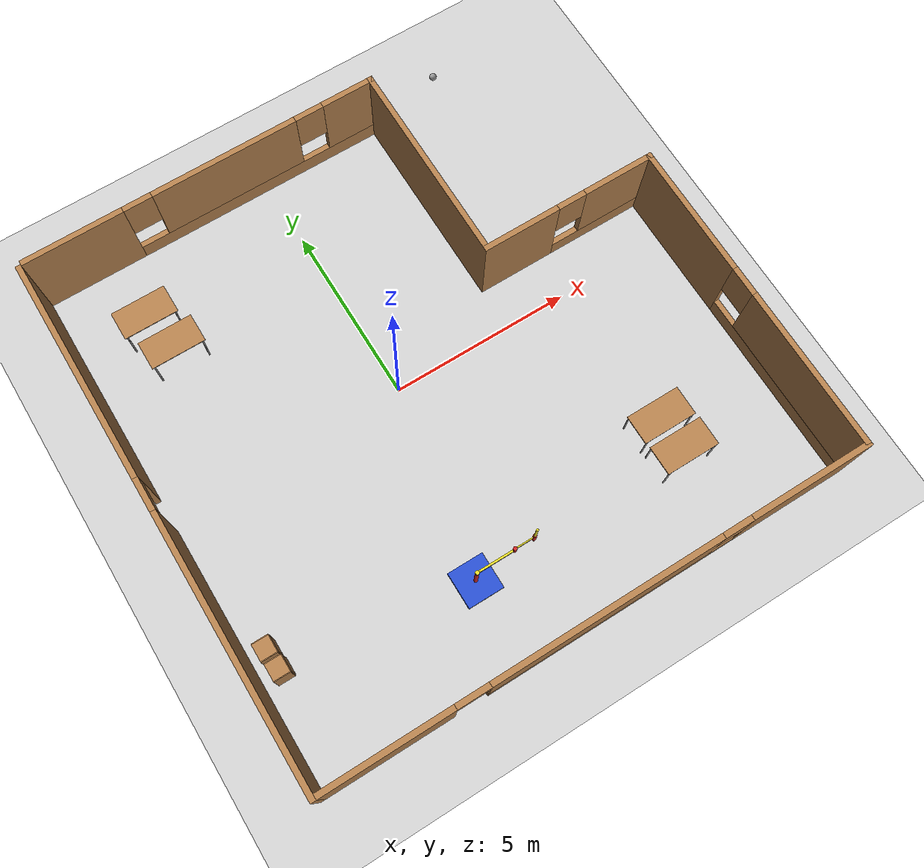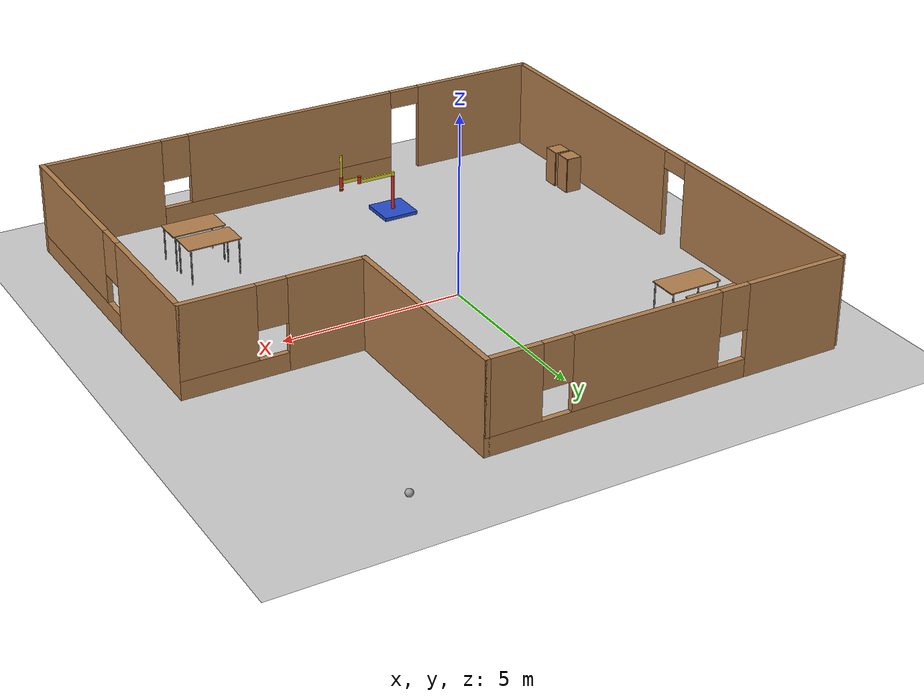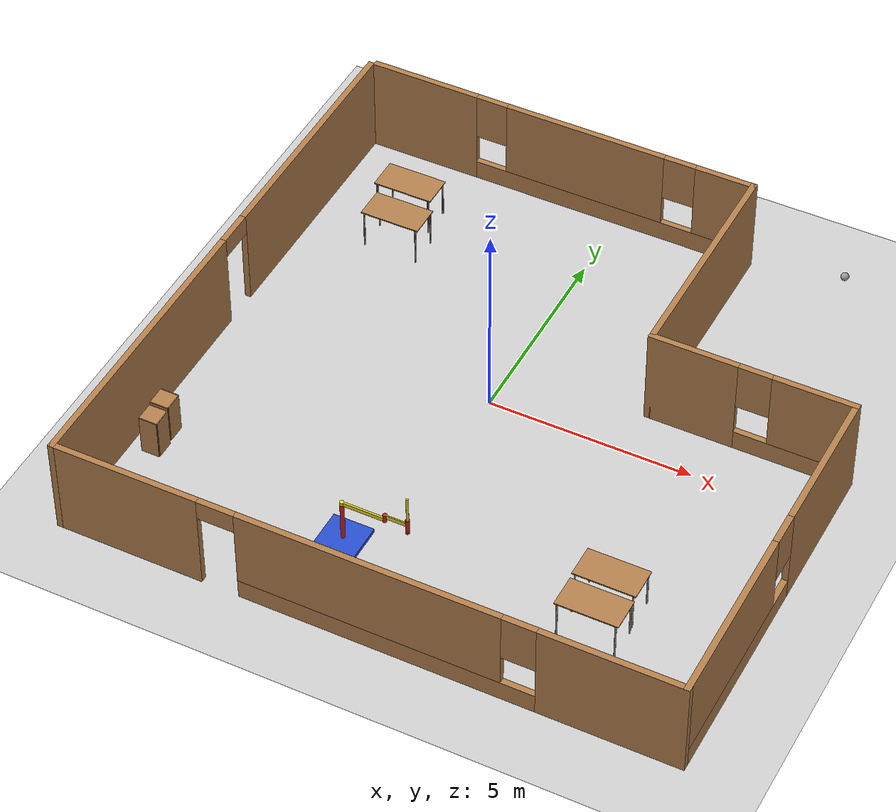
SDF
<sdf version="1.6">
 <world name="default">
  <light name="sun" type="directional">
   <pose>0 0 10 0 -0 0</pose>
   <diffuse>0.8 0.8 0.8 1</diffuse>
   <specular>0.2 0.2 0.2 1</specular>
   <attenuation>
    <range>1000</range>
    <constant>0.9</constant>
    <linear>0.01</linear>
    <quadratic>0.001</quadratic>
   </attenuation>
   <direction>-0.5 0.1 -0.9</direction>
  </light>
  <model name="ground_plane">
   <static>1</static>
   <link name="link">
    <collision name="collision">
     <geometry><plane><normal>0 0 1</normal><size>100 100</size></plane></geometry>
     <surface><friction><ode><mu>100</mu><mu2>50</mu2></ode></friction></surface>
    </collision>
    <visual name="visual">
     <cast_shadows>0</cast_shadows>
     <geometry><plane><normal>0 0 1</normal><size>100 100</size></plane></geometry>
     <material>
      <script><uri>file://media/materials/scripts/gazebo.material</uri><name>Gazebo/Grey</name></script>
     </material>
    </visual>
   </link>
  </model>
  <gravity>0 0 -9.8</gravity>
  <magnetic_field>6e-06 2.3e-05 -4.2e-05</magnetic_field>
  <atmosphere type="adiabatic"/>
  <physics name="default_physics" default="0" type="ode">
   <max_step_size>0.001</max_step_size>
   <real_time_factor>1</real_time_factor>
   <real_time_update_rate>1000</real_time_update_rate>
  </physics>
  <scene><ambient>0.4 0.4 0.4 1</ambient><background>0.7 0.7 0.7 1</background><shadows>1</shadows></scene>
  <spherical_coordinates>
   <surface_model>EARTH_WGS84</surface_model>
   <latitude_deg>0</latitude_deg>
   <longitude_deg>0</longitude_deg>
   <elevation>0</elevation>
   <heading_deg>0</heading_deg>
  </spherical_coordinates>
  <model name="My_building">
   <pose>0.78775 -0.34999 0 0 -0 0</pose>
   <link name="Wall_13">
    <pose>-2.35 7.225 0 0 -0 0</pose>
    <visual name="Wall_13_Visual_0">
     <pose>-3.60872 0 1.25 0 -0 0</pose>
     <geometry><box><size>2.78257 0.15 2.5</size></box></geometry>
     <material>
      <script><uri>file://media/materials/scripts/gazebo.material</uri><name>Gazebo/Wood</name></script>
      <ambient>1 1 1 1</ambient>
     </material>
     <meta><layer>0</layer></meta>
    </visual>
    <collision name="Wall_13_Collision_0">
     <geometry><box><size>2.78257 0.15 2.5</size></box></geometry>
     <pose>-3.60872 0 1.25 0 -0 0</pose>
    </collision>
    <visual name="Wall_13_Visual_1">
     <pose>1.39128 0 0.25 0 -0 0</pose>
     <geometry><box><size>7.21743 0.15 0.5</size></box></geometry>
     <material>
      <script><uri>file://media/materials/scripts/gazebo.material</uri><name>Gazebo/Wood</name></script>
      <ambient>1 1 1 1</ambient>
     </material>
     <meta><layer>0</layer></meta>
    </visual>
    <collision name="Wall_13_Collision_1">
     <geometry><box><size>7.21743 0.15 0.5</size></box></geometry>
     <pose>1.39128 0 0.25 0 -0 0</pose>
    </collision>
    <visual name="Wall_13_Visual_2">
     <pose>0.631176 0 1.5 0 -0 0</pose>
     <geometry><box><size>4.09722 0.15 2</size></box></geometry>
     <material>
      <script><uri>file://media/materials/scripts/gazebo.material</uri><name>Gazebo/Wood</name></script>
      <ambient>1 1 1 1</ambient>
     </material>
     <meta><layer>0</layer></meta>
    </visual>
    <collision name="Wall_13_Collision_2">
     <geometry><box><size>4.09722 0.15 2</size></box></geometry>
     <pose>0.631176 0 1.5 0 -0 0</pose>
    </collision>
    <visual name="Wall_13_Visual_3">
     <pose>4.23989 0 1.5 0 -0 0</pose>
     <geometry><box><size>1.52022 0.15 2</size></box></geometry>
     <material>
      <script><uri>file://media/materials/scripts/gazebo.material</uri><name>Gazebo/Wood</name></script>
      <ambient>1 1 1 1</ambient>
     </material>
     <meta><layer>0</layer></meta>
    </visual>
    <collision name="Wall_13_Collision_3">
     <geometry><box><size>1.52022 0.15 2</size></box></geometry>
     <pose>4.23989 0 1.5 0 -0 0</pose>
    </collision>
    <visual name="Wall_13_Visual_4">
     <pose>-1.81743 0 1.9 0 -0 0</pose>
     <geometry><box><size>0.8 0.15 1.2</size></box></geometry>
     <material>
      <script><uri>file://media/materials/scripts/gazebo.material</uri><name>Gazebo/Wood</name></script>
      <ambient>1 1 1 1</ambient>
     </material>
     <meta><layer>0</layer></meta>
    </visual>
    <collision name="Wall_13_Collision_4">
     <geometry><box><size>0.8 0.15 1.2</size></box></geometry>
     <pose>-1.81743 0 1.9 0 -0 0</pose>
    </collision>
    <visual name="Wall_13_Visual_5">
     <pose>3.07979 0 1.9 0 -0 0</pose>
     <geometry><box><size>0.8 0.15 1.2</size></box></geometry>
     <material>
      <script><uri>file://media/materials/scripts/gazebo.material</uri><name>Gazebo/Wood</name></script>
      <ambient>1 1 1 1</ambient>
     </material>
     <meta><layer>0</layer></meta>
    </visual>
    <collision name="Wall_13_Collision_5">
     <geometry><box><size>0.8 0.15 1.2</size></box></geometry>
     <pose>3.07979 0 1.9 0 -0 0</pose>
    </collision>
   </link>
   <link name="Wall_14">
    <collision name="Wall_14_Collision">
     <geometry><box><size>5.75 0.15 2.5</size></box></geometry>
     <pose>0 0 1.25 0 -0 0</pose>
    </collision>
    <visual name="Wall_14_Visual">
     <pose>0 0 1.25 0 -0 0</pose>
     <geometry><box><size>5.75 0.15 2.5</size></box></geometry>
     <material>
      <script><uri>file://media/materials/scripts/gazebo.material</uri><name>Gazebo/Wood</name></script>
      <ambient>0.760784 0.662745 0.627451 1</ambient>
     </material>
     <meta><layer>0</layer></meta>
    </visual>
    <pose>2.575 4.425 0 0 0 -1.5708</pose>
   </link>
   <link name="Wall_15">
    <pose>5 1.625 0 0 -0 0</pose>
    <visual name="Wall_15_Visual_0">
     <pose>-1.41634 0 1.25 0 -0 0</pose>
     <geometry><box><size>2.16732 0.15 2.5</size></box></geometry>
     <material>
      <script><uri>file://media/materials/scripts/gazebo.material</uri><name>Gazebo/Wood</name></script>
      <ambient>0.760784 0.662745 0.627451 1</ambient>
     </material>
     <meta><layer>0</layer></meta>
    </visual>
    <collision name="Wall_15_Collision_0">
     <geometry><box><size>2.16732 0.15 2.5</size></box></geometry>
     <pose>-1.41634 0 1.25 0 -0 0</pose>
    </collision>
    <visual name="Wall_15_Visual_1">
     <pose>1.08366 0 0.25 0 -0 0</pose>
     <geometry><box><size>2.83268 0.15 0.5</size></box></geometry>
     <material>
      <script><uri>file://media/materials/scripts/gazebo.material</uri><name>Gazebo/Wood</name></script>
      <ambient>0.760784 0.662745 0.627451 1</ambient>
     </material>
     <meta><layer>0</layer></meta>
    </visual>
    <collision name="Wall_15_Collision_1">
     <geometry><box><size>2.83268 0.15 0.5</size></box></geometry>
     <pose>1.08366 0 0.25 0 -0 0</pose>
    </collision>
    <visual name="Wall_15_Visual_2">
     <pose>1.48366 0 1.5 0 -0 0</pose>
     <geometry><box><size>2.03268 0.15 2</size></box></geometry>
     <material>
      <script><uri>file://media/materials/scripts/gazebo.material</uri><name>Gazebo/Wood</name></script>
      <ambient>0.760784 0.662745 0.627451 1</ambient>
     </material>
     <meta><layer>0</layer></meta>
    </visual>
    <collision name="Wall_15_Collision_2">
     <geometry><box><size>2.03268 0.15 2</size></box></geometry>
     <pose>1.48366 0 1.5 0 -0 0</pose>
    </collision>
    <visual name="Wall_15_Visual_3">
     <pose>0.06732 0 1.9 0 -0 0</pose>
     <geometry><box><size>0.8 0.15 1.2</size></box></geometry>
     <material>
      <script><uri>file://media/materials/scripts/gazebo.material</uri><name>Gazebo/Wood</name></script>
      <ambient>0.760784 0.662745 0.627451 1</ambient>
     </material>
     <meta><layer>0</layer></meta>
    </visual>
    <collision name="Wall_15_Collision_3">
     <geometry><box><size>0.8 0.15 1.2</size></box></geometry>
     <pose>0.06732 0 1.9 0 -0 0</pose>
    </collision>
   </link>
   <link name="Wall_16">
    <pose>7.425 -2.8 0 0 0 -1.5708</pose>
    <visual name="Wall_16_Visual_0">
     <pose>-2.64832 0 1.25 0 -0 0</pose>
     <geometry><box><size>3.70336 0.15 2.5</size></box></geometry>
     <material>
      <script><uri>file://media/materials/scripts/gazebo.material</uri><name>Gazebo/Wood</name></script>
      <ambient>0.760784 0.662745 0.627451 1</ambient>
     </material>
     <meta><layer>0</layer></meta>
    </visual>
    <collision name="Wall_16_Collision_0">
     <geometry><box><size>3.70336 0.15 2.5</size></box></geometry>
     <pose>-2.64832 0 1.25 0 -0 0</pose>
    </collision>
    <visual name="Wall_16_Visual_1">
     <pose>1.85168 0 0.25 0 -0 0</pose>
     <geometry><box><size>5.29664 0.15 0.5</size></box></geometry>
     <material>
      <script><uri>file://media/materials/scripts/gazebo.material</uri><name>Gazebo/Wood</name></script>
      <ambient>0.760784 0.662745 0.627451 1</ambient>
     </material>
     <meta><layer>0</layer></meta>
    </visual>
    <collision name="Wall_16_Collision_1">
     <geometry><box><size>5.29664 0.15 0.5</size></box></geometry>
     <pose>1.85168 0 0.25 0 -0 0</pose>
    </collision>
    <visual name="Wall_16_Visual_2">
     <pose>2.25168 0 1.5 0 -0 0</pose>
     <geometry><box><size>4.49664 0.15 2</size></box></geometry>
     <material>
      <script><uri>file://media/materials/scripts/gazebo.material</uri><name>Gazebo/Wood</name></script>
      <ambient>0.760784 0.662745 0.627451 1</ambient>
     </material>
     <meta><layer>0</layer></meta>
    </visual>
    <collision name="Wall_16_Collision_2">
     <geometry><box><size>4.49664 0.15 2</size></box></geometry>
     <pose>2.25168 0 1.5 0 -0 0</pose>
    </collision>
    <visual name="Wall_16_Visual_3">
     <pose>-0.396642 0 1.9 0 -0 0</pose>
     <geometry><box><size>0.8 0.15 1.2</size></box></geometry>
     <material>
      <script><uri>file://media/materials/scripts/gazebo.material</uri><name>Gazebo/Wood</name></script>
      <ambient>0.760784 0.662745 0.627451 1</ambient>
     </material>
     <meta><layer>0</layer></meta>
    </visual>
    <collision name="Wall_16_Collision_3">
     <geometry><box><size>0.8 0.15 1.2</size></box></geometry>
     <pose>-0.396642 0 1.9 0 -0 0</pose>
    </collision>
   </link>
   <link name="Wall_17">
    <pose>0 -7.225 0 0 -0 3.14159</pose>
    <visual name="Wall_17_Visual_0">
     <pose>-5.80155 0 1.25 0 -0 0</pose>
     <geometry><box><size>3.3969 0.15 2.5</size></box></geometry>
     <material>
      <script><uri>file://media/materials/scripts/gazebo.material</uri><name>Gazebo/Wood</name></script>
      <ambient>0.760784 0.662745 0.627451 1</ambient>
     </material>
     <meta><layer>0</layer></meta>
    </visual>
    <collision name="Wall_17_Collision_0">
     <geometry><box><size>3.3969 0.15 2.5</size></box></geometry>
     <pose>-5.80155 0 1.25 0 -0 0</pose>
    </collision>
    <visual name="Wall_17_Visual_1">
     <pose>5.67394 0 1.25 0 -0 0</pose>
     <geometry><box><size>3.65213 0.15 2.5</size></box></geometry>
     <material>
      <script><uri>file://media/materials/scripts/gazebo.material</uri><name>Gazebo/Wood</name></script>
      <ambient>0.760784 0.662745 0.627451 1</ambient>
     </material>
     <meta><layer>0</layer></meta>
    </visual>
    <collision name="Wall_17_Collision_1">
     <geometry><box><size>3.65213 0.15 2.5</size></box></geometry>
     <pose>5.67394 0 1.25 0 -0 0</pose>
    </collision>
    <visual name="Wall_17_Visual_2">
     <pose>-0.577613 0 0.25 0 -0 0</pose>
     <geometry><box><size>7.05096 0.15 0.5</size></box></geometry>
     <material>
      <script><uri>file://media/materials/scripts/gazebo.material</uri><name>Gazebo/Wood</name></script>
      <ambient>0.760784 0.662745 0.627451 1</ambient>
     </material>
     <meta><layer>0</layer></meta>
    </visual>
    <collision name="Wall_17_Collision_2">
     <geometry><box><size>7.05096 0.15 0.5</size></box></geometry>
     <pose>-0.577613 0 0.25 0 -0 0</pose>
    </collision>
    <visual name="Wall_17_Visual_3">
     <pose>-0.177613 0 1.5 0 -0 0</pose>
     <geometry><box><size>6.25096 0.15 2</size></box></geometry>
     <material>
      <script><uri>file://media/materials/scripts/gazebo.material</uri><name>Gazebo/Wood</name></script>
      <ambient>0.760784 0.662745 0.627451 1</ambient>
     </material>
     <meta><layer>0</layer></meta>
    </visual>
    <collision name="Wall_17_Collision_3">
     <geometry><box><size>6.25096 0.15 2</size></box></geometry>
     <pose>-0.177613 0 1.5 0 -0 0</pose>
    </collision>
    <visual name="Wall_17_Visual_4">
     <pose>-3.70309 0 1.9 0 -0 0</pose>
     <geometry><box><size>0.8 0.15 1.2</size></box></geometry>
     <material>
      <script><uri>file://media/materials/scripts/gazebo.material</uri><name>Gazebo/Wood</name></script>
      <ambient>0.760784 0.662745 0.627451 1</ambient>
     </material>
     <meta><layer>0</layer></meta>
    </visual>
    <collision name="Wall_17_Collision_4">
     <geometry><box><size>0.8 0.15 1.2</size></box></geometry>
     <pose>-3.70309 0 1.9 0 -0 0</pose>
    </collision>
    <visual name="Wall_17_Visual_5">
     <pose>3.39787 0 2.25 0 -0 0</pose>
     <geometry><box><size>0.9 0.15 0.5</size></box></geometry>
     <material>
      <script><uri>file://media/materials/scripts/gazebo.material</uri><name>Gazebo/Wood</name></script>
      <ambient>0.760784 0.662745 0.627451 1</ambient>
     </material>
     <meta><layer>0</layer></meta>
    </visual>
    <collision name="Wall_17_Collision_5">
     <geometry><box><size>0.9 0.15 0.5</size></box></geometry>
     <pose>3.39787 0 2.25 0 -0 0</pose>
    </collision>
   </link>
   <link name="Wall_18">
    <pose>-7.425 -0.049999 0 0 -0 1.5708</pose>
    <visual name="Wall_18_Visual_0">
     <pose>-3.575 0 1.25 0 -0 0</pose>
     <geometry><box><size>7.34999 0.15 2.5</size></box></geometry>
     <material>
      <script><uri>file://media/materials/scripts/gazebo.material</uri><name>Gazebo/Wood</name></script>
      <ambient>0.760784 0.662745 0.627451 1</ambient>
     </material>
     <meta><layer>0</layer></meta>
    </visual>
    <collision name="Wall_18_Collision_0">
     <geometry><box><size>7.34999 0.15 2.5</size></box></geometry>
     <pose>-3.575 0 1.25 0 -0 0</pose>
    </collision>
    <visual name="Wall_18_Visual_1">
     <pose>4.125 0 1.25 0 -0 0</pose>
     <geometry><box><size>6.25001 0.15 2.5</size></box></geometry>
     <material>
      <script><uri>file://media/materials/scripts/gazebo.material</uri><name>Gazebo/Wood</name></script>
      <ambient>0.760784 0.662745 0.627451 1</ambient>
     </material>
     <meta><layer>0</layer></meta>
    </visual>
    <collision name="Wall_18_Collision_1">
     <geometry><box><size>6.25001 0.15 2.5</size></box></geometry>
     <pose>4.125 0 1.25 0 -0 0</pose>
    </collision>
    <visual name="Wall_18_Visual_2">
     <pose>0.549992 0 2.25 0 -0 0</pose>
     <geometry><box><size>0.9 0.15 0.5</size></box></geometry>
     <material>
      <script><uri>file://media/materials/scripts/gazebo.material</uri><name>Gazebo/Wood</name></script>
      <ambient>0.760784 0.662745 0.627451 1</ambient>
     </material>
     <meta><layer>0</layer></meta>
    </visual>
    <collision name="Wall_18_Collision_2">
     <geometry><box><size>0.9 0.15 0.5</size></box></geometry>
     <pose>0.549992 0 2.25 0 -0 0</pose>
    </collision>
   </link>
   <static>1</static>
  </model>
  <model name="ball">
   <link name="link_0">
    <inertial>
     <mass>1</mass>
     <inertia><ixx>0.1</ixx><ixy>0</ixy><ixz>0</ixz><iyy>0.1</iyy><iyz>0</iyz><izz>0.1</izz></inertia>
    </inertial>
    <visual name="visual">
     <geometry><sphere><radius>0.1</radius></sphere></geometry>
     <material>
      <lighting>1</lighting>
      <script><uri>file://media/materials/scripts/gazebo.material</uri><name>Gazebo/Grey</name></script>
      <ambient>1 1 1 1</ambient>
      <diffuse>1 1 1 1</diffuse>
      <specular>1 1 1 1</specular>
      <emissive>1 1 1 1</emissive>
      <shader type="vertex"><normal_map>__default__</normal_map></shader>
     </material>
    </visual>
    <collision name="collision">
     <geometry><sphere><radius>0.1</radius></sphere></geometry>
     <surface>
      <friction>
       <ode><mu>1</mu><mu2>1</mu2><fdir1>0 0 0</fdir1><slip1>0</slip1><slip2>0</slip2></ode>
       <torsional>
        <coefficient>1</coefficient>
        <patch_radius>0</patch_radius>
        <surface_radius>0</surface_radius>
        <use_patch_radius>1</use_patch_radius>
        <ode><slip>0</slip></ode>
       </torsional>
      </friction>
      <bounce><restitution_coefficient>0</restitution_coefficient><threshold>1e+06</threshold></bounce>
      <contact>
       <collide_without_contact>0</collide_without_contact>
       <collide_without_contact_bitmask>1</collide_without_contact_bitmask>
       <collide_bitmask>1</collide_bitmask>
       <ode>
        <soft_cfm>0</soft_cfm>
        <soft_erp>0.2</soft_erp>
        <kp>1e+13</kp>
        <kd>1</kd>
        <max_vel>0.01</max_vel>
        <min_depth>0</min_depth>
       </ode>
       <bullet>
        <split_impulse>1</split_impulse>
        <split_impulse_penetration_threshold>-0.01</split_impulse_penetration_threshold>
        <soft_cfm>0</soft_cfm>
        <soft_erp>0.2</soft_erp>
        <kp>1e+13</kp>
        <kd>1</kd>
       </bullet>
      </contact>
     </surface>
    </collision>
   </link>
   <static>0</static>
   <pose>5.61344 7.45896 0.1 0 -0 0</pose>
  </model>
  <model name="cabinet">
   <static>1</static>
   <link name="cabinet_bottom_plate">
    <inertial>
     <pose>0 0 -1 0 -0 0</pose>
     <inertia><ixx>2.05</ixx><ixy>0</ixy><ixz>0</ixz><iyy>2.05</iyy><iyz>0</iyz><izz>2.05</izz></inertia>
     <mass>25</mass>
    </inertial>
    <collision name="cabinet_bottom_plate_geom">
     <pose>0 0 0.01 0 -0 0</pose>
     <geometry><box><size>0.45 0.45 0.02</size></box></geometry>
    </collision>
    <visual name="cabinet_bottom_plate_geom_visual">
     <pose>0 0 0.01 0 -0 0</pose>
     <geometry><box><size>0.45 0.45 0.02</size></box></geometry>
     <material>
      <script><uri>file://media/materials/scripts/gazebo.material</uri><name>Gazebo/Wood</name></script>
     </material>
    </visual>
    <collision name="cabinet_bottom_plate_geom_cabinet_back_plate">
     <pose>0.235 0 0.51 0 -0 0</pose>
     <geometry><box><size>0.02 0.45 1.02</size></box></geometry>
    </collision>
    <visual name="cabinet_bottom_plate_geom_cabinet_back_plate_visual">
     <pose>0.235 0 0.51 0 -0 0</pose>
     <geometry><box><size>0.02 0.45 1.02</size></box></geometry>
     <material>
      <script><uri>file://media/materials/scripts/gazebo.material</uri><name>Gazebo/Wood</name></script>
     </material>
    </visual>
    <collision name="cabinet_bottom_plate_geom_cabinet_left_plate">
     <pose>0 0.235 0.51 0 -0 0</pose>
     <geometry><box><size>0.45 0.02 1.02</size></box></geometry>
    </collision>
    <visual name="cabinet_bottom_plate_geom_cabinet_left_plate_visual">
     <pose>0 0.235 0.51 0 -0 0</pose>
     <geometry><box><size>0.45 0.02 1.02</size></box></geometry>
     <material>
      <script><uri>file://media/materials/scripts/gazebo.material</uri><name>Gazebo/Wood</name></script>
     </material>
    </visual>
    <collision name="cabinet_bottom_plate_geom_cabinet_middle_plate">
     <pose>0 0 0.51 0 -0 0</pose>
     <geometry><box><size>0.45 0.45 0.02</size></box></geometry>
    </collision>
    <visual name="cabinet_bottom_plate_geom_cabinet_middle_plate_visual">
     <pose>0 0 0.51 0 -0 0</pose>
     <geometry><box><size>0.45 0.45 0.02</size></box></geometry>
     <material>
      <script><uri>file://media/materials/scripts/gazebo.material</uri><name>Gazebo/Wood</name></script>
     </material>
    </visual>
    <collision name="cabinet_bottom_plate_geom_cabinet_right_plate">
     <pose>0 -0.235 0.51 0 -0 0</pose>
     <geometry><box><size>0.45 0.02 1.02</size></box></geometry>
    </collision>
    <visual name="cabinet_bottom_plate_geom_cabinet_right_plate_visual">
     <pose>0 -0.235 0.51 0 -0 0</pose>
     <geometry><box><size>0.45 0.02 1.02</size></box></geometry>
     <material>
      <script><uri>file://media/materials/scripts/gazebo.material</uri><name>Gazebo/Wood</name></script>
     </material>
    </visual>
    <collision name="cabinet_bottom_plate_geom_cabinet_top_plate">
     <pose>0 0 1.01 0 -0 0</pose>
     <geometry><box><size>0.45 0.45 0.02</size></box></geometry>
    </collision>
    <visual name="cabinet_bottom_plate_geom_cabinet_top_plate_visual">
     <pose>0 0 1.01 0 -0 0</pose>
     <geometry><box><size>0.45 0.45 0.02</size></box></geometry>
     <material>
      <script><uri>file://media/materials/scripts/gazebo.material</uri><name>Gazebo/Wood</name></script>
     </material>
    </visual>
   </link>
   <pose>-6.06194 -4.071 0 0 -0 0</pose>
  </model>
  <model name="cabinet_0">
   <static>1</static>
   <link name="cabinet_bottom_plate">
    <inertial>
     <pose>0 0 -1 0 -0 0</pose>
     <inertia><ixx>2.05</ixx><ixy>0</ixy><ixz>0</ixz><iyy>2.05</iyy><iyz>0</iyz><izz>2.05</izz></inertia>
     <mass>25</mass>
    </inertial>
    <collision name="cabinet_bottom_plate_geom">
     <pose>0 0 0.01 0 -0 0</pose>
     <geometry><box><size>0.45 0.45 0.02</size></box></geometry>
    </collision>
    <visual name="cabinet_bottom_plate_geom_visual">
     <pose>0 0 0.01 0 -0 0</pose>
     <geometry><box><size>0.45 0.45 0.02</size></box></geometry>
     <material>
      <script><uri>file://media/materials/scripts/gazebo.material</uri><name>Gazebo/Wood</name></script>
     </material>
    </visual>
    <collision name="cabinet_bottom_plate_geom_cabinet_back_plate">
     <pose>0.235 0 0.51 0 -0 0</pose>
     <geometry><box><size>0.02 0.45 1.02</size></box></geometry>
    </collision>
    <visual name="cabinet_bottom_plate_geom_cabinet_back_plate_visual">
     <pose>0.235 0 0.51 0 -0 0</pose>
     <geometry><box><size>0.02 0.45 1.02</size></box></geometry>
     <material>
      <script><uri>file://media/materials/scripts/gazebo.material</uri><name>Gazebo/Wood</name></script>
     </material>
    </visual>
    <collision name="cabinet_bottom_plate_geom_cabinet_left_plate">
     <pose>0 0.235 0.51 0 -0 0</pose>
     <geometry><box><size>0.45 0.02 1.02</size></box></geometry>
    </collision>
    <visual name="cabinet_bottom_plate_geom_cabinet_left_plate_visual">
     <pose>0 0.235 0.51 0 -0 0</pose>
     <geometry><box><size>0.45 0.02 1.02</size></box></geometry>
     <material>
      <script><uri>file://media/materials/scripts/gazebo.material</uri><name>Gazebo/Wood</name></script>
     </material>
    </visual>
    <collision name="cabinet_bottom_plate_geom_cabinet_middle_plate">
     <pose>0 0 0.51 0 -0 0</pose>
     <geometry><box><size>0.45 0.45 0.02</size></box></geometry>
    </collision>
    <visual name="cabinet_bottom_plate_geom_cabinet_middle_plate_visual">
     <pose>0 0 0.51 0 -0 0</pose>
     <geometry><box><size>0.45 0.45 0.02</size></box></geometry>
     <material>
      <script><uri>file://media/materials/scripts/gazebo.material</uri><name>Gazebo/Wood</name></script>
     </material>
    </visual>
    <collision name="cabinet_bottom_plate_geom_cabinet_right_plate">
     <pose>0 -0.235 0.51 0 -0 0</pose>
     <geometry><box><size>0.45 0.02 1.02</size></box></geometry>
    </collision>
    <visual name="cabinet_bottom_plate_geom_cabinet_right_plate_visual">
     <pose>0 -0.235 0.51 0 -0 0</pose>
     <geometry><box><size>0.45 0.02 1.02</size></box></geometry>
     <material>
      <script><uri>file://media/materials/scripts/gazebo.material</uri><name>Gazebo/Wood</name></script>
     </material>
    </visual>
    <collision name="cabinet_bottom_plate_geom_cabinet_top_plate">
     <pose>0 0 1.01 0 -0 0</pose>
     <geometry><box><size>0.45 0.45 0.02</size></box></geometry>
    </collision>
    <visual name="cabinet_bottom_plate_geom_cabinet_top_plate_visual">
     <pose>0 0 1.01 0 -0 0</pose>
     <geometry><box><size>0.45 0.45 0.02</size></box></geometry>
     <material>
      <script><uri>file://media/materials/scripts/gazebo.material</uri><name>Gazebo/Wood</name></script>
     </material>
    </visual>
   </link>
   <pose>-6.02678 -4.61449 0 0 -0 0</pose>
  </model>
  <model name="simple_arm">
   <link name="arm_base">
    <inertial>
     <pose>0 0 0.00099 0 -0 0</pose>
     <inertia><ixx>1.11</ixx><ixy>0</ixy><ixz>0</ixz><iyy>100.11</iyy><iyz>0</iyz><izz>1.01</izz></inertia>
     <mass>101</mass>
    </inertial>
    <collision name="arm_base_geom">
     <pose>0 0 0.05 0 -0 0</pose>
     <geometry><box><size>1 1 0.1</size></box></geometry>
    </collision>
    <visual name="arm_base_geom_visual">
     <pose>0 0 0.05 0 -0 0</pose>
     <geometry><box><size>1 1 0.1</size></box></geometry>
     <material>
      <script><uri>file://media/materials/scripts/gazebo.material</uri><name>Gazebo/Blue</name></script>
     </material>
    </visual>
    <collision name="arm_base_geom_arm_trunk">
     <pose>0 0 0.6 0 -0 0</pose>
     <geometry><cylinder><radius>0.05</radius><length>1</length></cylinder></geometry>
    </collision>
    <visual name="arm_base_geom_arm_trunk_visual">
     <pose>0 0 0.6 0 -0 0</pose>
     <geometry><cylinder><radius>0.05</radius><length>1</length></cylinder></geometry>
     <material>
      <script><uri>file://media/materials/scripts/gazebo.material</uri><name>Gazebo/Red</name></script>
     </material>
    </visual>
   </link>
   <link name="arm_shoulder_pan">
    <pose>0 0 1.1 0 -0 0</pose>
    <inertial>
     <pose>0.045455 0 0 0 -0 0</pose>
     <inertia><ixx>0.011</ixx><ixy>0</ixy><ixz>0</ixz><iyy>0.0225</iyy><iyz>0</iyz><izz>0.0135</izz></inertia>
     <mass>1.1</mass>
    </inertial>
    <collision name="arm_shoulder_pan_geom">
     <pose>0 0 0.05 0 -0 0</pose>
     <geometry><cylinder><radius>0.05</radius><length>0.1</length></cylinder></geometry>
    </collision>
    <visual name="arm_shoulder_pan_geom_visual">
     <pose>0 0 0.05 0 -0 0</pose>
     <geometry><cylinder><radius>0.05</radius><length>0.1</length></cylinder></geometry>
     <material>
      <script><uri>file://media/materials/scripts/gazebo.material</uri><name>Gazebo/Yellow</name></script>
     </material>
    </visual>
    <collision name="arm_shoulder_pan_geom_arm_shoulder">
     <pose>0.55 0 0.05 0 -0 0</pose>
     <geometry><box><size>1 0.05 0.1</size></box></geometry>
    </collision>
    <visual name="arm_shoulder_pan_geom_arm_shoulder_visual">
     <pose>0.55 0 0.05 0 -0 0</pose>
     <geometry><box><size>1 0.05 0.1</size></box></geometry>
     <material>
      <script><uri>file://media/materials/scripts/gazebo.material</uri><name>Gazebo/Yellow</name></script>
     </material>
    </visual>
   </link>
   <link name="arm_elbow_pan">
    <pose>1.05 0 1.1 0 -0 0</pose>
    <inertial>
     <pose>0.0875 0 0.083333 0 -0 0</pose>
     <inertia>
      <ixx>0.031</ixx>
      <ixy>0</ixy>
      <ixz>0.005</ixz>
      <iyy>0.07275</iyy>
      <iyz>0</iyz>
      <izz>0.04475</izz>
     </inertia>
     <mass>1.2</mass>
    </inertial>
    <collision name="arm_elbow_pan_geom">
     <pose>0 0 0.1 0 -0 0</pose>
     <geometry><cylinder><radius>0.05</radius><length>0.2</length></cylinder></geometry>
    </collision>
    <visual name="arm_elbow_pan_geom_visual">
     <pose>0 0 0.1 0 -0 0</pose>
     <geometry><cylinder><radius>0.05</radius><length>0.2</length></cylinder></geometry>
     <material>
      <script><uri>file://media/materials/scripts/gazebo.material</uri><name>Gazebo/Red</name></script>
     </material>
    </visual>
    <collision name="arm_elbow_pan_geom_arm_elbow">
     <pose>0.3 0 0.15 0 -0 0</pose>
     <geometry><box><size>0.5 0.03 0.1</size></box></geometry>
    </collision>
    <visual name="arm_elbow_pan_geom_arm_elbow_visual">
     <pose>0.3 0 0.15 0 -0 0</pose>
     <geometry><box><size>0.5 0.03 0.1</size></box></geometry>
     <material>
      <script><uri>file://media/materials/scripts/gazebo.material</uri><name>Gazebo/Yellow</name></script>
     </material>
    </visual>
    <collision name="arm_elbow_pan_geom_arm_wrist">
     <pose>0.55 0 0.15 0 -0 0</pose>
     <geometry><cylinder><radius>0.05</radius><length>0.3</length></cylinder></geometry>
    </collision>
    <visual name="arm_elbow_pan_geom_arm_wrist_visual">
     <pose>0.55 0 0.15 0 -0 0</pose>
     <geometry><cylinder><radius>0.05</radius><length>0.3</length></cylinder></geometry>
     <material>
      <script><uri>file://media/materials/scripts/gazebo.material</uri><name>Gazebo/Red</name></script>
     </material>
    </visual>
   </link>
   <link name="arm_wrist_lift">
    <pose>1.6 0 1.05 0 -0 0</pose>
    <inertial>
     <inertia><ixx>0.01</ixx><ixy>0</ixy><ixz>0</ixz><iyy>0.01</iyy><iyz>0</iyz><izz>0.001</izz></inertia>
     <mass>0.1</mass>
    </inertial>
    <collision name="arm_wrist_lift_geom">
     <pose>0 0 0.5 0 -0 0</pose>
     <geometry><cylinder><radius>0.03</radius><length>1</length></cylinder></geometry>
    </collision>
    <visual name="arm_wrist_lift_geom_visual">
     <pose>0 0 0.5 0 -0 0</pose>
     <geometry><cylinder><radius>0.03</radius><length>1</length></cylinder></geometry>
     <material>
      <script><uri>file://media/materials/scripts/gazebo.material</uri><name>Gazebo/Yellow</name></script>
     </material>
    </visual>
   </link>
   <link name="arm_wrist_roll">
    <pose>1.6 0 1 0 -0 0</pose>
    <inertial>
     <inertia><ixx>0.01</ixx><ixy>0</ixy><ixz>0</ixz><iyy>0.01</iyy><iyz>0</iyz><izz>0.001</izz></inertia>
     <mass>0.1</mass>
    </inertial>
    <collision name="arm_wrist_roll_geom">
     <pose>0 0 0.025 0 -0 0</pose>
     <geometry><cylinder><radius>0.05</radius><length>0.05</length></cylinder></geometry>
    </collision>
    <visual name="arm_wrist_roll_geom_visual">
     <pose>0 0 0.025 0 -0 0</pose>
     <geometry><cylinder><radius>0.05</radius><length>0.05</length></cylinder></geometry>
     <material>
      <script><uri>file://media/materials/scripts/gazebo.material</uri><name>Gazebo/Red</name></script>
     </material>
    </visual>
   </link>
   <joint name="arm_shoulder_pan_joint" type="revolute">
    <parent>arm_base</parent>
    <child>arm_shoulder_pan</child>
    <axis>
     <dynamics>
      <damping>1</damping>
      <friction>0</friction>
      <spring_reference>0</spring_reference>
      <spring_stiffness>0</spring_stiffness>
     </dynamics>
     <xyz>0 0 1</xyz>
     <use_parent_model_frame>1</use_parent_model_frame>
     <limit><lower>-1e+16</lower><upper>1e+16</upper></limit>
    </axis>
   </joint>
   <joint name="arm_elbow_pan_joint" type="revolute">
    <parent>arm_shoulder_pan</parent>
    <child>arm_elbow_pan</child>
    <axis>
     <dynamics>
      <damping>1</damping>
      <friction>0</friction>
      <spring_reference>0</spring_reference>
      <spring_stiffness>0</spring_stiffness>
     </dynamics>
     <xyz>0 0 1</xyz>
     <use_parent_model_frame>1</use_parent_model_frame>
     <limit><lower>-1e+16</lower><upper>1e+16</upper></limit>
    </axis>
   </joint>
   <joint name="arm_wrist_lift_joint" type="prismatic">
    <parent>arm_elbow_pan</parent>
    <child>arm_wrist_lift</child>
    <axis>
     <dynamics>
      <damping>1</damping>
      <friction>0</friction>
      <spring_reference>0</spring_reference>
      <spring_stiffness>0</spring_stiffness>
     </dynamics>
     <limit><lower>-0.8</lower><upper>0.1</upper></limit>
     <xyz>0 0 1</xyz>
     <use_parent_model_frame>1</use_parent_model_frame>
    </axis>
   </joint>
   <joint name="arm_wrist_roll_joint" type="revolute">
    <parent>arm_wrist_lift</parent>
    <child>arm_wrist_roll</child>
    <axis>
     <dynamics>
      <damping>1</damping>
      <friction>0</friction>
      <spring_reference>0</spring_reference>
      <spring_stiffness>0</spring_stiffness>
     </dynamics>
     <limit><lower>-2.99999</lower><upper>2.99999</upper></limit>
     <xyz>0 0 1</xyz>
     <use_parent_model_frame>1</use_parent_model_frame>
    </axis>
   </joint>
   <pose>-0.948035 -5.1928 0 0 0 -0.000592</pose>
  </model>
  <model name="table">
   <static>1</static>
   <link name="link">
    <collision name="surface">
     <pose>0 0 1 0 -0 0</pose>
     <geometry><box><size>1.5 0.8 0.03</size></box></geometry>
     <surface><friction><ode><mu>0.6</mu><mu2>0.6</mu2></ode></friction></surface>
    </collision>
    <visual name="visual1">
     <pose>0 0 1 0 -0 0</pose>
     <geometry><box><size>1.5 0.8 0.03</size></box></geometry>
     <material>
      <script><uri>file://media/materials/scripts/gazebo.material</uri><name>Gazebo/Wood</name></script>
     </material>
    </visual>
    <collision name="front_left_leg">
     <pose>0.68 0.38 0.5 0 -0 0</pose>
     <geometry><cylinder><radius>0.02</radius><length>1</length></cylinder></geometry>
    </collision>
    <visual name="front_left_leg">
     <pose>0.68 0.38 0.5 0 -0 0</pose>
     <geometry><cylinder><radius>0.02</radius><length>1</length></cylinder></geometry>
     <material>
      <script><uri>file://media/materials/scripts/gazebo.material</uri><name>Gazebo/Grey</name></script>
     </material>
    </visual>
    <collision name="front_right_leg">
     <pose>0.68 -0.38 0.5 0 -0 0</pose>
     <geometry><cylinder><radius>0.02</radius><length>1</length></cylinder></geometry>
    </collision>
    <visual name="front_right_leg">
     <pose>0.68 -0.38 0.5 0 -0 0</pose>
     <geometry><cylinder><radius>0.02</radius><length>1</length></cylinder></geometry>
     <material>
      <script><uri>file://media/materials/scripts/gazebo.material</uri><name>Gazebo/Grey</name></script>
     </material>
    </visual>
    <collision name="back_right_leg">
     <pose>-0.68 -0.38 0.5 0 -0 0</pose>
     <geometry><cylinder><radius>0.02</radius><length>1</length></cylinder></geometry>
    </collision>
    <visual name="back_right_leg">
     <pose>-0.68 -0.38 0.5 0 -0 0</pose>
     <geometry><cylinder><radius>0.02</radius><length>1</length></cylinder></geometry>
     <material>
      <script><uri>file://media/materials/scripts/gazebo.material</uri><name>Gazebo/Grey</name></script>
     </material>
    </visual>
    <collision name="back_left_leg">
     <pose>-0.68 0.38 0.5 0 -0 0</pose>
     <geometry><cylinder><radius>0.02</radius><length>1</length></cylinder></geometry>
    </collision>
    <visual name="back_left_leg">
     <pose>-0.68 0.38 0.5 0 -0 0</pose>
     <geometry><cylinder><radius>0.02</radius><length>1</length></cylinder></geometry>
     <material>
      <script><uri>file://media/materials/scripts/gazebo.material</uri><name>Gazebo/Grey</name></script>
     </material>
    </visual>
   </link>
   <pose>5.05491 -5.18339 0 0 -0 0</pose>
  </model>
  <model name="table_0">
   <static>1</static>
   <link name="link">
    <collision name="surface">
     <pose>0 0 1 0 -0 0</pose>
     <geometry><box><size>1.5 0.8 0.03</size></box></geometry>
     <surface><friction><ode><mu>0.6</mu><mu2>0.6</mu2></ode></friction></surface>
    </collision>
    <visual name="visual1">
     <pose>0 0 1 0 -0 0</pose>
     <geometry><box><size>1.5 0.8 0.03</size></box></geometry>
     <material>
      <script><uri>file://media/materials/scripts/gazebo.material</uri><name>Gazebo/Wood</name></script>
     </material>
    </visual>
    <collision name="front_left_leg">
     <pose>0.68 0.38 0.5 0 -0 0</pose>
     <geometry><cylinder><radius>0.02</radius><length>1</length></cylinder></geometry>
    </collision>
    <visual name="front_left_leg">
     <pose>0.68 0.38 0.5 0 -0 0</pose>
     <geometry><cylinder><radius>0.02</radius><length>1</length></cylinder></geometry>
     <material>
      <script><uri>file://media/materials/scripts/gazebo.material</uri><name>Gazebo/Grey</name></script>
     </material>
    </visual>
    <collision name="front_right_leg">
     <pose>0.68 -0.38 0.5 0 -0 0</pose>
     <geometry><cylinder><radius>0.02</radius><length>1</length></cylinder></geometry>
    </collision>
    <visual name="front_right_leg">
     <pose>0.68 -0.38 0.5 0 -0 0</pose>
     <geometry><cylinder><radius>0.02</radius><length>1</length></cylinder></geometry>
     <material>
      <script><uri>file://media/materials/scripts/gazebo.material</uri><name>Gazebo/Grey</name></script>
     </material>
    </visual>
    <collision name="back_right_leg">
     <pose>-0.68 -0.38 0.5 0 -0 0</pose>
     <geometry><cylinder><radius>0.02</radius><length>1</length></cylinder></geometry>
    </collision>
    <visual name="back_right_leg">
     <pose>-0.68 -0.38 0.5 0 -0 0</pose>
     <geometry><cylinder><radius>0.02</radius><length>1</length></cylinder></geometry>
     <material>
      <script><uri>file://media/materials/scripts/gazebo.material</uri><name>Gazebo/Grey</name></script>
     </material>
    </visual>
    <collision name="back_left_leg">
     <pose>-0.68 0.38 0.5 0 -0 0</pose>
     <geometry><cylinder><radius>0.02</radius><length>1</length></cylinder></geometry>
    </collision>
    <visual name="back_left_leg">
     <pose>-0.68 0.38 0.5 0 -0 0</pose>
     <geometry><cylinder><radius>0.02</radius><length>1</length></cylinder></geometry>
     <material>
      <script><uri>file://media/materials/scripts/gazebo.material</uri><name>Gazebo/Grey</name></script>
     </material>
    </visual>
   </link>
   <pose>5.02497 -4.25134 0 0 -0 0</pose>
  </model>
  <model name="table_1">
   <static>1</static>
   <link name="link">
    <collision name="surface">
     <pose>0 0 1 0 -0 0</pose>
     <geometry><box><size>1.5 0.8 0.03</size></box></geometry>
     <surface><friction><ode><mu>0.6</mu><mu2>0.6</mu2></ode></friction></surface>
    </collision>
    <visual name="visual1">
     <pose>0 0 1 0 -0 0</pose>
     <geometry><box><size>1.5 0.8 0.03</size></box></geometry>
     <material>
      <script><uri>file://media/materials/scripts/gazebo.material</uri><name>Gazebo/Wood</name></script>
     </material>
    </visual>
    <collision name="front_left_leg">
     <pose>0.68 0.38 0.5 0 -0 0</pose>
     <geometry><cylinder><radius>0.02</radius><length>1</length></cylinder></geometry>
    </collision>
    <visual name="front_left_leg">
     <pose>0.68 0.38 0.5 0 -0 0</pose>
     <geometry><cylinder><radius>0.02</radius><length>1</length></cylinder></geometry>
     <material>
      <script><uri>file://media/materials/scripts/gazebo.material</uri><name>Gazebo/Grey</name></script>
     </material>
    </visual>
    <collision name="front_right_leg">
     <pose>0.68 -0.38 0.5 0 -0 0</pose>
     <geometry><cylinder><radius>0.02</radius><length>1</length></cylinder></geometry>
    </collision>
    <visual name="front_right_leg">
     <pose>0.68 -0.38 0.5 0 -0 0</pose>
     <geometry><cylinder><radius>0.02</radius><length>1</length></cylinder></geometry>
     <material>
      <script><uri>file://media/materials/scripts/gazebo.material</uri><name>Gazebo/Grey</name></script>
     </material>
    </visual>
    <collision name="back_right_leg">
     <pose>-0.68 -0.38 0.5 0 -0 0</pose>
     <geometry><cylinder><radius>0.02</radius><length>1</length></cylinder></geometry>
    </collision>
    <visual name="back_right_leg">
     <pose>-0.68 -0.38 0.5 0 -0 0</pose>
     <geometry><cylinder><radius>0.02</radius><length>1</length></cylinder></geometry>
     <material>
      <script><uri>file://media/materials/scripts/gazebo.material</uri><name>Gazebo/Grey</name></script>
     </material>
    </visual>
    <collision name="back_left_leg">
     <pose>-0.68 0.38 0.5 0 -0 0</pose>
     <geometry><cylinder><radius>0.02</radius><length>1</length></cylinder></geometry>
    </collision>
    <visual name="back_left_leg">
     <pose>-0.68 0.38 0.5 0 -0 0</pose>
     <geometry><cylinder><radius>0.02</radius><length>1</length></cylinder></geometry>
     <material>
      <script><uri>file://media/materials/scripts/gazebo.material</uri><name>Gazebo/Grey</name></script>
     </material>
    </visual>
   </link>
   <pose>-4.58024 4.87364 0 0 -0 0</pose>
  </model>
  <model name="table_2">
   <static>1</static>
   <link name="link">
    <collision name="surface">
     <pose>0 0 1 0 -0 0</pose>
     <geometry><box><size>1.5 0.8 0.03</size></box></geometry>
     <surface><friction><ode><mu>0.6</mu><mu2>0.6</mu2></ode></friction></surface>
    </collision>
    <visual name="visual1">
     <pose>0 0 1 0 -0 0</pose>
     <geometry><box><size>1.5 0.8 0.03</size></box></geometry>
     <material>
      <script><uri>file://media/materials/scripts/gazebo.material</uri><name>Gazebo/Wood</name></script>
     </material>
    </visual>
    <collision name="front_left_leg">
     <pose>0.68 0.38 0.5 0 -0 0</pose>
     <geometry><cylinder><radius>0.02</radius><length>1</length></cylinder></geometry>
    </collision>
    <visual name="front_left_leg">
     <pose>0.68 0.38 0.5 0 -0 0</pose>
     <geometry><cylinder><radius>0.02</radius><length>1</length></cylinder></geometry>
     <material>
      <script><uri>file://media/materials/scripts/gazebo.material</uri><name>Gazebo/Grey</name></script>
     </material>
    </visual>
    <collision name="front_right_leg">
     <pose>0.68 -0.38 0.5 0 -0 0</pose>
     <geometry><cylinder><radius>0.02</radius><length>1</length></cylinder></geometry>
    </collision>
    <visual name="front_right_leg">
     <pose>0.68 -0.38 0.5 0 -0 0</pose>
     <geometry><cylinder><radius>0.02</radius><length>1</length></cylinder></geometry>
     <material>
      <script><uri>file://media/materials/scripts/gazebo.material</uri><name>Gazebo/Grey</name></script>
     </material>
    </visual>
    <collision name="back_right_leg">
     <pose>-0.68 -0.38 0.5 0 -0 0</pose>
     <geometry><cylinder><radius>0.02</radius><length>1</length></cylinder></geometry>
    </collision>
    <visual name="back_right_leg">
     <pose>-0.68 -0.38 0.5 0 -0 0</pose>
     <geometry><cylinder><radius>0.02</radius><length>1</length></cylinder></geometry>
     <material>
      <script><uri>file://media/materials/scripts/gazebo.material</uri><name>Gazebo/Grey</name></script>
     </material>
    </visual>
    <collision name="back_left_leg">
     <pose>-0.68 0.38 0.5 0 -0 0</pose>
     <geometry><cylinder><radius>0.02</radius><length>1</length></cylinder></geometry>
    </collision>
    <visual name="back_left_leg">
     <pose>-0.68 0.38 0.5 0 -0 0</pose>
     <geometry><cylinder><radius>0.02</radius><length>1</length></cylinder></geometry>
     <material>
      <script><uri>file://media/materials/scripts/gazebo.material</uri><name>Gazebo/Grey</name></script>
     </material>
    </visual>
   </link>
   <pose>-4.364 3.80484 0 0 -0 0</pose>
  </model>
 </world>
</sdf>
